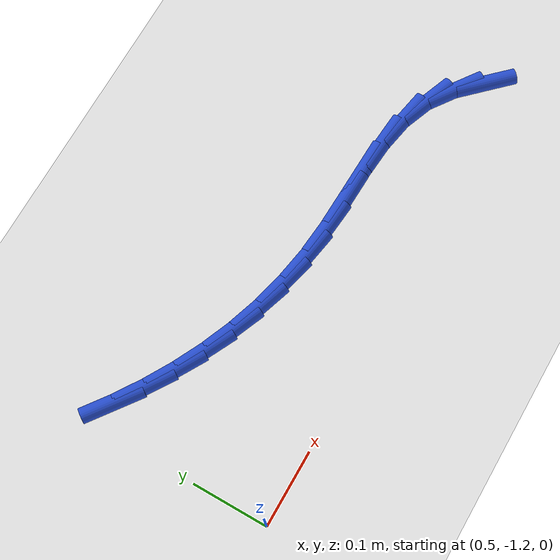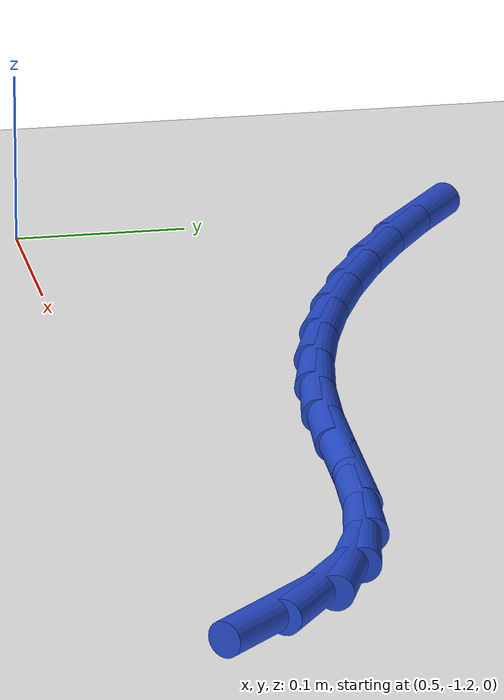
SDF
<sdf version="1.6">
 <world name="default">
  <model name="ground_plane">
   <static>1</static>
   <link name="link">
    <collision name="collision">
     <geometry><plane><normal>0 0 1</normal><size>100 100</size></plane></geometry>
     <surface><friction><ode><mu>100</mu><mu2>50</mu2></ode></friction></surface>
    </collision>
    <visual name="visual">
     <cast_shadows>0</cast_shadows>
     <geometry><plane><normal>0 0 1</normal><size>100 100</size></plane></geometry>
     <material>
      <script><uri>file://media/materials/scripts/gazebo.material</uri><name>Gazebo/WhiteGlow</name></script>
     </material>
    </visual>
   </link>
  </model>
  <model name="line">
   <link name="link_148">
    <pose>1.1220184350293292 -1.163138732061757 0.01 0 1.57 -0.8026807032448704</pose>
    <collision name="collision">
     <geometry><cylinder><radius>0.01</radius><length>0.08</length></cylinder></geometry>
    </collision>
    <visual name="visual">
     <material>
      <script><name>Gazebo/Blue</name><uri>file://media/materials/scripts/gazebo.material</uri></script>
     </material>
     <geometry><cylinder><radius>0.01</radius><length>0.08</length></cylinder></geometry>
    </visual>
   </link>
   <link name="link_149">
    <pose>1.093506036976522 -1.1336233670215896 0.01 0 1.57 -0.6179317308848752</pose>
    <collision name="collision">
     <geometry><cylinder><radius>0.01</radius><length>0.08</length></cylinder></geometry>
    </collision>
    <visual name="visual">
     <material>
      <script><name>Gazebo/Blue</name><uri>file://media/materials/scripts/gazebo.material</uri></script>
     </material>
     <geometry><cylinder><radius>0.01</radius><length>0.08</length></cylinder></geometry>
    </visual>
   </link>
   <link name="link_150">
    <pose>1.0611336188537623 -1.110613336769982 0.01 0 1.57 -0.36545144460474516</pose>
    <collision name="collision">
     <geometry><cylinder><radius>0.01</radius><length>0.08</length></cylinder></geometry>
    </collision>
    <visual name="visual">
     <material>
      <script><name>Gazebo/Blue</name><uri>file://media/materials/scripts/gazebo.material</uri></script>
     </material>
     <geometry><cylinder><radius>0.01</radius><length>0.08</length></cylinder></geometry>
    </visual>
   </link>
   <link name="link_151">
    <pose>1.0239795311459339 -1.0963967148149734 0.01 0 1.57 -0.18604286676093035</pose>
    <collision name="collision">
     <geometry><cylinder><radius>0.01</radius><length>0.08</length></cylinder></geometry>
    </collision>
    <visual name="visual">
     <material>
      <script><name>Gazebo/Blue</name><uri>file://media/materials/scripts/gazebo.material</uri></script>
     </material>
     <geometry><cylinder><radius>0.01</radius><length>0.08</length></cylinder></geometry>
    </visual>
   </link>
   <link name="link_152">
    <pose>0.9831806814687931 -1.0887175781234861 0.01 0 1.57 -0.07829340704697067</pose>
    <collision name="collision">
     <geometry><cylinder><radius>0.01</radius><length>0.08</length></cylinder></geometry>
    </collision>
    <visual name="visual">
     <material>
      <script><name>Gazebo/Blue</name><uri>file://media/materials/scripts/gazebo.material</uri></script>
     </material>
     <geometry><cylinder><radius>0.01</radius><length>0.08</length></cylinder></geometry>
    </visual>
   </link>
   <link name="link_153">
    <pose>0.9398739774380952 -1.085320003662442 0.01 0 1.57 -0.03069777089538019</pose>
    <collision name="collision">
     <geometry><cylinder><radius>0.01</radius><length>0.08</length></cylinder></geometry>
    </collision>
    <visual name="visual">
     <material>
      <script><name>Gazebo/Blue</name><uri>file://media/materials/scripts/gazebo.material</uri></script>
     </material>
     <geometry><cylinder><radius>0.01</radius><length>0.08</length></cylinder></geometry>
    </visual>
   </link>
   <link name="link_154">
    <pose>0.8951963266695965 -1.0839480683987637 0.01 0 1.57 -0.03565975603954153</pose>
    <collision name="collision">
     <geometry><cylinder><radius>0.01</radius><length>0.08</length></cylinder></geometry>
    </collision>
    <visual name="visual">
     <material>
      <script><name>Gazebo/Blue</name><uri>file://media/materials/scripts/gazebo.material</uri></script>
     </material>
     <geometry><cylinder><radius>0.01</radius><length>0.08</length></cylinder></geometry>
    </visual>
   </link>
   <link name="link_155">
    <pose>0.8502846367790536 -1.0823458492993734 0.01 0 1.57 -0.0907106131697476</pose>
    <collision name="collision">
     <geometry><cylinder><radius>0.01</radius><length>0.08</length></cylinder></geometry>
    </collision>
    <visual name="visual">
     <material>
      <script><name>Gazebo/Blue</name><uri>file://media/materials/scripts/gazebo.material</uri></script>
     </material>
     <geometry><cylinder><radius>0.01</radius><length>0.08</length></cylinder></geometry>
    </visual>
   </link>
   <link name="link_156">
    <pose>0.8062366387144284 -1.0783392329852488 0.01 0 1.57 -0.16907043720621734</pose>
    <collision name="collision">
     <geometry><cylinder><radius>0.01</radius><length>0.08</length></cylinder></geometry>
    </collision>
    <visual name="visual">
     <material>
      <script><name>Gazebo/Blue</name><uri>file://media/materials/scripts/gazebo.material</uri></script>
     </material>
     <geometry><cylinder><radius>0.01</radius><length>0.08</length></cylinder></geometry>
    </visual>
   </link>
   <link name="link_157">
    <pose>0.7635298798048556 -1.0710491883333118 0.01 0 1.57 -0.24661794992104483</pose>
    <collision name="collision">
     <geometry><cylinder><radius>0.01</radius><length>0.08</length></cylinder></geometry>
    </collision>
    <visual name="visual">
     <material>
      <script><name>Gazebo/Blue</name><uri>file://media/materials/scripts/gazebo.material</uri></script>
     </material>
     <geometry><cylinder><radius>0.01</radius><length>0.08</length></cylinder></geometry>
    </visual>
   </link>
   <link name="link_158">
    <pose>0.7221464876772209 -1.0606312314838267 0.01 0 1.57 -0.32169593460409635</pose>
    <collision name="collision">
     <geometry><cylinder><radius>0.01</radius><length>0.08</length></cylinder></geometry>
    </collision>
    <visual name="visual">
     <material>
      <script><name>Gazebo/Blue</name><uri>file://media/materials/scripts/gazebo.material</uri></script>
     </material>
     <geometry><cylinder><radius>0.01</radius><length>0.08</length></cylinder></geometry>
    </visual>
   </link>
   <link name="link_159">
    <pose>0.6820547613627148 -1.0472697557811115 0.01 0 1.57 -0.39348922973906586</pose>
    <collision name="collision">
     <geometry><cylinder><radius>0.01</radius><length>0.08</length></cylinder></geometry>
    </collision>
    <visual name="visual">
     <material>
      <script><name>Gazebo/Blue</name><uri>file://media/materials/scripts/gazebo.material</uri></script>
     </material>
     <geometry><cylinder><radius>0.01</radius><length>0.08</length></cylinder></geometry>
    </visual>
   </link>
   <link name="link_160">
    <pose>0.6432229998925245 -1.0311491545694813 0.01 0 1.57 -0.46138109994786164</pose>
    <collision name="collision">
     <geometry><cylinder><radius>0.01</radius><length>0.08</length></cylinder></geometry>
    </collision>
    <visual name="visual">
     <material>
      <script><name>Gazebo/Blue</name><uri>file://media/materials/scripts/gazebo.material</uri></script>
     </material>
     <geometry><cylinder><radius>0.01</radius><length>0.08</length></cylinder></geometry>
    </visual>
   </link>
   <link name="link_161">
    <pose>0.6056195022978408 -1.0124538211932537 0.01 0 1.57 -0.5249597798817003</pose>
    <collision name="collision">
     <geometry><cylinder><radius>0.01</radius><length>0.08</length></cylinder></geometry>
    </collision>
    <visual name="visual">
     <material>
      <script><name>Gazebo/Blue</name><uri>file://media/materials/scripts/gazebo.material</uri></script>
     </material>
     <geometry><cylinder><radius>0.01</radius><length>0.08</length></cylinder></geometry>
    </visual>
   </link>
   <link name="link_162">
    <pose>0.5692125676098531 -0.9913681489967451 0.01 0 1.57 -0.5840022659566131</pose>
    <collision name="collision">
     <geometry><cylinder><radius>0.01</radius><length>0.08</length></cylinder></geometry>
    </collision>
    <visual name="visual">
     <material>
      <script><name>Gazebo/Blue</name><uri>file://media/materials/scripts/gazebo.material</uri></script>
     </material>
     <geometry><cylinder><radius>0.01</radius><length>0.08</length></cylinder></geometry>
    </visual>
   </link>
   <link name="link_163">
    <pose>0.5339704948597507 -0.9680765313242724 0.01 0 1.57 -0.6384437989493291</pose>
    <collision name="collision">
     <geometry><cylinder><radius>0.01</radius><length>0.08</length></cylinder></geometry>
    </collision>
    <visual name="visual">
     <material>
      <script><name>Gazebo/Blue</name><uri>file://media/materials/scripts/gazebo.material</uri></script>
     </material>
     <geometry><cylinder><radius>0.01</radius><length>0.08</length></cylinder></geometry>
    </visual>
   </link>
  </model>
 </world>
</sdf>
